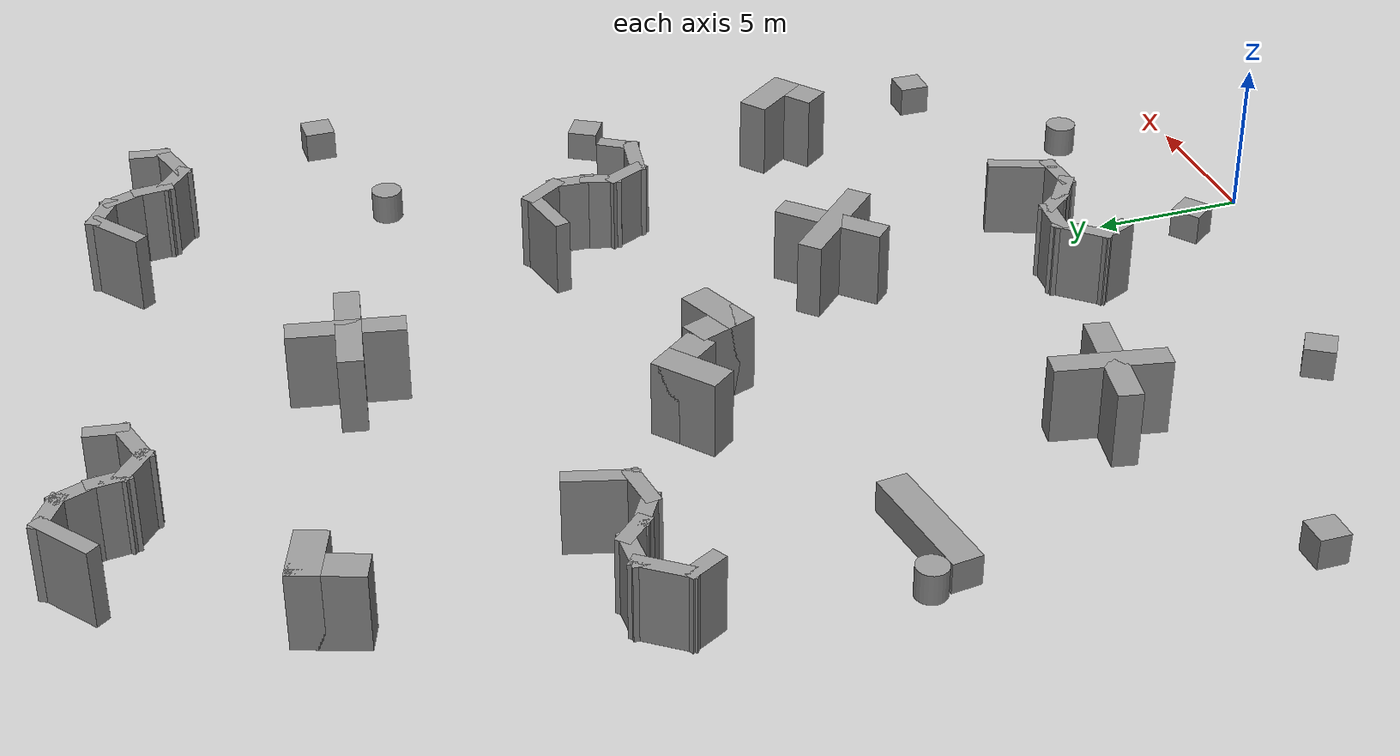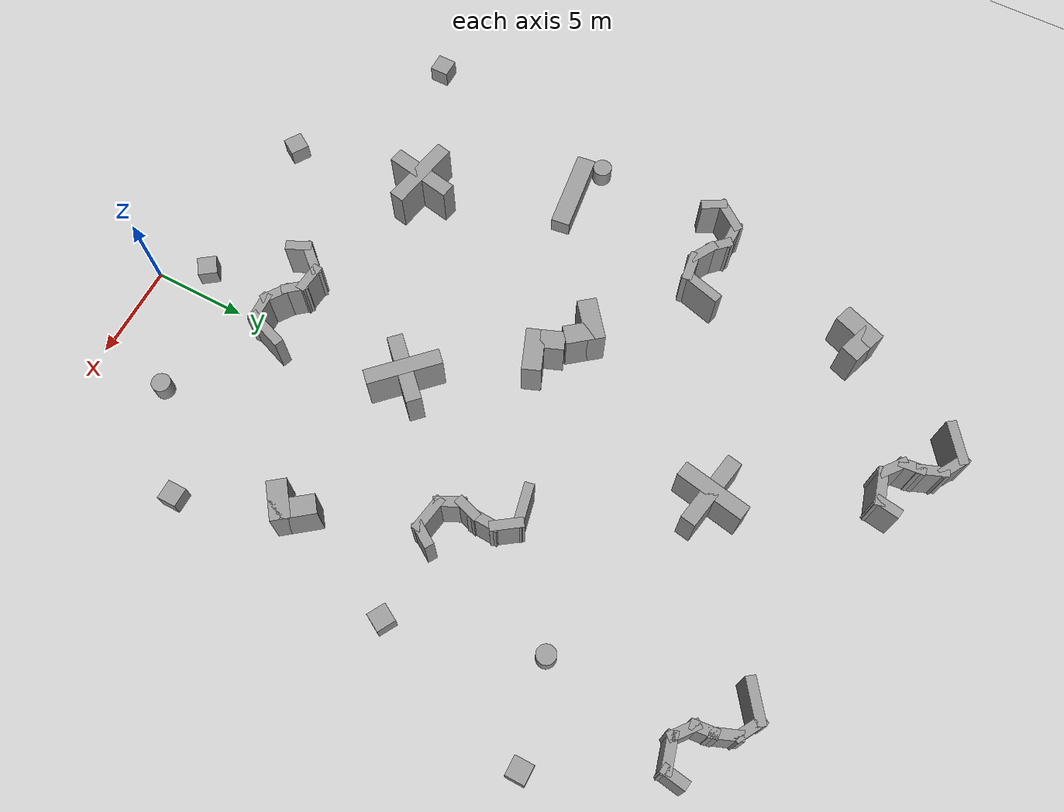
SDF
<sdf version="1.7">
 <world name="default">
  <light name="sun" type="directional">
   <pose>0 0 10 0 -0 0</pose>
   <diffuse>0.8 0.8 0.8 1</diffuse>
   <specular>0.2 0.2 0.2 1</specular>
   <attenuation>
    <range>1000</range>
    <constant>0.9</constant>
    <linear>0.01</linear>
    <quadratic>0.001</quadratic>
   </attenuation>
   <direction>-0.5 0.1 -0.9</direction>
   <spot><inner_angle>0</inner_angle><outer_angle>0</outer_angle><falloff>0</falloff></spot>
  </light>
  <model name="ground_plane">
   <static>1</static>
   <link name="link">
    <collision name="collision">
     <geometry><plane><normal>0 0 1</normal><size>100 100</size></plane></geometry>
     <surface><friction><ode><mu>100</mu><mu2>50</mu2></ode></friction></surface>
    </collision>
    <visual name="visual">
     <cast_shadows>0</cast_shadows>
     <geometry><plane><normal>0 0 1</normal><size>100 100</size></plane></geometry>
     <material>
      <script><uri>file://media/materials/scripts/gazebo.material</uri><name>Gazebo/Grey</name></script>
     </material>
    </visual>
   </link>
  </model>
  <gravity>0 0 -9.8</gravity>
  <magnetic_field>6e-06 2.3e-05 -4.2e-05</magnetic_field>
  <atmosphere type="adiabatic"/>
  <physics type="ode">
   <max_step_size>0.001</max_step_size>
   <real_time_factor>1</real_time_factor>
   <real_time_update_rate>1000</real_time_update_rate>
  </physics>
  <scene><ambient>0.4 0.4 0.4 1</ambient><background>0.7 0.7 0.7 1</background><shadows>1</shadows></scene>
  <spherical_coordinates>
   <surface_model>EARTH_WGS84</surface_model>
   <latitude_deg>0</latitude_deg>
   <longitude_deg>0</longitude_deg>
   <elevation>0</elevation>
   <heading_deg>0</heading_deg>
  </spherical_coordinates>
  <model name="unit_box">
   <pose>-1.29282 2.36192 0.5 0 -0 0.628744</pose>
   <link name="link">
    <inertial>
     <mass>1</mass>
     <inertia>
      <ixx>0.166667</ixx>
      <ixy>0</ixy>
      <ixz>0</ixz>
      <iyy>0.166667</iyy>
      <iyz>0</iyz>
      <izz>0.166667</izz>
     </inertia>
    </inertial>
    <collision name="collision"><geometry><box><size>1 1 1</size></box></geometry></collision>
    <visual name="visual">
     <geometry><box><size>1 1 1</size></box></geometry>
     <material>
      <script><name>Gazebo/Grey</name><uri>file://media/materials/scripts/gazebo.material</uri></script>
     </material>
    </visual>
   </link>
  </model>
  <model name="unit_box_0">
   <pose>10.0011 7.85153 0.499995 0 -1e-05 -5e-06</pose>
   <link name="link">
    <inertial>
     <mass>1</mass>
     <inertia>
      <ixx>0.166667</ixx>
      <ixy>0</ixy>
      <ixz>0</ixz>
      <iyy>0.166667</iyy>
      <iyz>0</iyz>
      <izz>0.166667</izz>
     </inertia>
    </inertial>
    <collision name="collision"><geometry><box><size>1 1 1</size></box></geometry></collision>
    <visual name="visual">
     <geometry><box><size>1 1 1</size></box></geometry>
     <material>
      <script><name>Gazebo/Grey</name><uri>file://media/materials/scripts/gazebo.material</uri></script>
     </material>
    </visual>
   </link>
  </model>
  <model name="unit_cylinder">
   <pose>-16.4277 18.0529 0.499991 2e-06 2e-06 -0.028876</pose>
   <link name="link">
    <inertial>
     <mass>1</mass>
     <inertia><ixx>0.145833</ixx><ixy>0</ixy><ixz>0</ixz><iyy>0.145833</iyy><iyz>0</iyz><izz>0.125</izz></inertia>
    </inertial>
    <collision name="collision">
     <geometry><cylinder><radius>0.5</radius><length>1</length></cylinder></geometry>
    </collision>
    <visual name="visual">
     <geometry><cylinder><radius>0.5</radius><length>1</length></cylinder></geometry>
     <material>
      <script><name>Gazebo/Grey</name><uri>file://media/materials/scripts/gazebo.material</uri></script>
     </material>
    </visual>
   </link>
  </model>
  <model name="unit_cylinder_0">
   <pose>5.39833 4.0388 0.499995 3e-06 -2e-06 0</pose>
   <link name="link">
    <inertial>
     <mass>1</mass>
     <inertia><ixx>0.145833</ixx><ixy>0</ixy><ixz>0</ixz><iyy>0.145833</iyy><iyz>0</iyz><izz>0.125</izz></inertia>
    </inertial>
    <collision name="collision">
     <geometry><cylinder><radius>0.5</radius><length>1</length></cylinder></geometry>
    </collision>
    <visual name="visual">
     <geometry><cylinder><radius>0.5</radius><length>1</length></cylinder></geometry>
     <material>
      <script><name>Gazebo/Grey</name><uri>file://media/materials/scripts/gazebo.material</uri></script>
     </material>
    </visual>
   </link>
  </model>
  <model name="unit_box_2">
   <pose>-18.3592 6.99219 0.499995 0 1e-05 0</pose>
   <link name="link">
    <inertial>
     <mass>1</mass>
     <inertia>
      <ixx>0.166667</ixx>
      <ixy>0</ixy>
      <ixz>0</ixz>
      <iyy>0.166667</iyy>
      <iyz>0</iyz>
      <izz>0.166667</izz>
     </inertia>
    </inertial>
    <collision name="collision"><geometry><box><size>1 1 1</size></box></geometry></collision>
    <visual name="visual">
     <geometry><box><size>1 1 1</size></box></geometry>
     <material>
      <script><name>Gazebo/Grey</name><uri>file://media/materials/scripts/gazebo.material</uri></script>
     </material>
    </visual>
   </link>
  </model>
  <model name="unit_box_3">
   <pose>10.4755 19.8984 0.5 0 -0 1.05451</pose>
   <link name="link">
    <inertial>
     <mass>1</mass>
     <inertia>
      <ixx>0.166667</ixx>
      <ixy>0</ixy>
      <ixz>0</ixz>
      <iyy>0.166667</iyy>
      <iyz>0</iyz>
      <izz>0.166667</izz>
     </inertia>
    </inertial>
    <collision name="collision"><geometry><box><size>1 1 1</size></box></geometry></collision>
    <visual name="visual">
     <geometry><box><size>1 1 1</size></box></geometry>
     <material>
      <script><name>Gazebo/Grey</name><uri>file://media/materials/scripts/gazebo.material</uri></script>
     </material>
    </visual>
   </link>
  </model>
  <model name="unit_cylinder_2">
   <pose>8.40854 27.4757 0.499999 0 -0 0</pose>
   <link name="link">
    <inertial>
     <mass>1</mass>
     <inertia><ixx>0.145833</ixx><ixy>0</ixy><ixz>0</ixz><iyy>0.145833</iyy><iyz>0</iyz><izz>0.125</izz></inertia>
    </inertial>
    <collision name="collision">
     <geometry><cylinder><radius>0.5</radius><length>1</length></cylinder></geometry>
    </collision>
    <visual name="visual">
     <geometry><cylinder><radius>0.5</radius><length>1</length></cylinder></geometry>
     <material>
      <script><name>Gazebo/Grey</name><uri>file://media/materials/scripts/gazebo.material</uri></script>
     </material>
    </visual>
   </link>
  </model>
  <model name="unit_box_4">
   <pose>-14.4082 17.3073 0.498109 0 1e-06 0.129412</pose>
   <link name="link">
    <inertial>
     <mass>1</mass>
     <inertia>
      <ixx>0.166667</ixx>
      <ixy>0</ixy>
      <ixz>0</ixz>
      <iyy>0.166667</iyy>
      <iyz>0</iyz>
      <izz>0.166667</izz>
     </inertia>
    </inertial>
    <collision name="collision"><geometry><box><size>4.27951 1 1</size></box></geometry></collision>
    <visual name="visual">
     <geometry><box><size>4.27951 1 1</size></box></geometry>
     <material>
      <script><name>Gazebo/Grey</name><uri>file://media/materials/scripts/gazebo.material</uri></script>
     </material>
    </visual>
   </link>
  </model>
  <model name="unit_box_6">
   <pose>-9.9585 2.43367 0.5 0 0 -0.568217</pose>
   <link name="link">
    <inertial>
     <mass>1</mass>
     <inertia>
      <ixx>0.166667</ixx>
      <ixy>0</ixy>
      <ixz>0</ixz>
      <iyy>0.166667</iyy>
      <iyz>0</iyz>
      <izz>0.166667</izz>
     </inertia>
    </inertial>
    <collision name="collision"><geometry><box><size>1 1 1</size></box></geometry></collision>
    <visual name="visual">
     <geometry><box><size>1 1 1</size></box></geometry>
     <material>
      <script><name>Gazebo/Grey</name><uri>file://media/materials/scripts/gazebo.material</uri></script>
     </material>
    </visual>
   </link>
  </model>
  <model name="unit_box_8">
   <pose>13.472 28.7702 0.499995 0 1e-05 0</pose>
   <link name="link">
    <inertial>
     <mass>1</mass>
     <inertia>
      <ixx>0.166667</ixx>
      <ixy>0</ixy>
      <ixz>0</ixz>
      <iyy>0.166667</iyy>
      <iyz>0</iyz>
      <izz>0.166667</izz>
     </inertia>
    </inertial>
    <collision name="collision"><geometry><box><size>1 1 1</size></box></geometry></collision>
    <visual name="visual">
     <geometry><box><size>1 1 1</size></box></geometry>
     <material>
      <script><name>Gazebo/Grey</name><uri>file://media/materials/scripts/gazebo.material</uri></script>
     </material>
    </visual>
   </link>
  </model>
  <model name="L_shape">
   <pose>-7.38122 20.2486 0 0 0 -2.46998</pose>
   <link name="Wall_0">
    <collision name="Wall_0_Collision">
     <geometry><box><size>2.25 1 2.5</size></box></geometry>
     <pose>0 0 1.25 0 -0 0</pose>
    </collision>
    <visual name="Wall_0_Visual">
     <pose>0 0 1.25 0 -0 0</pose>
     <geometry><box><size>2.25 1 2.5</size></box></geometry>
     <material>
      <script><uri>file://media/materials/scripts/gazebo.material</uri><name>Gazebo/Grey</name></script>
      <ambient>1 1 1 1</ambient>
     </material>
     <meta><layer>0</layer></meta>
    </visual>
    <pose>-1.1474 -1.16979 0 0 -0 3.14159</pose>
   </link>
   <link name="Wall_1">
    <collision name="Wall_1_Collision">
     <geometry><box><size>2 1 2.5</size></box></geometry>
     <pose>0 0 1.25 0 -0 0</pose>
    </collision>
    <visual name="Wall_1_Visual">
     <pose>0 0 1.25 0 -0 0</pose>
     <geometry><box><size>2 1 2.5</size></box></geometry>
     <material>
      <script><uri>file://media/materials/scripts/gazebo.material</uri><name>Gazebo/Grey</name></script>
      <ambient>1 1 1 1</ambient>
     </material>
     <meta><layer>0</layer></meta>
    </visual>
    <pose>-1.7724 -0.669791 0 0 -0 1.5708</pose>
   </link>
   <static>1</static>
  </model>
  <model name="x_shape">
   <pose>1.15096 17.2708 0 0 -0 0</pose>
   <link name="Wall_3">
    <collision name="Wall_3_Collision">
     <geometry><box><size>3.89983 0.8 2.5</size></box></geometry>
     <pose>0 0 1.25 0 -0 0</pose>
    </collision>
    <visual name="Wall_3_Visual">
     <pose>0 0 1.25 0 -0 0</pose>
     <geometry><box><size>3.89983 0.8 2.5</size></box></geometry>
     <material>
      <script><uri>file://media/materials/scripts/gazebo.material</uri><name>Gazebo/Grey</name></script>
      <ambient>1 1 1 1</ambient>
     </material>
     <meta><layer>0</layer></meta>
    </visual>
    <pose>-1.69468 -2.43768 0 0 -0 2.35619</pose>
   </link>
   <link name="Wall_5">
    <collision name="Wall_5_Collision">
     <geometry><box><size>3.65035 0.8 2.5</size></box></geometry>
     <pose>0 0 1.25 0 -0 0</pose>
    </collision>
    <visual name="Wall_5_Visual">
     <pose>0 0 1.25 0 -0 0</pose>
     <geometry><box><size>3.65035 0.8 2.5</size></box></geometry>
     <material>
      <script><uri>file://media/materials/scripts/gazebo.material</uri><name>Gazebo/Grey</name></script>
      <ambient>1 1 1 1</ambient>
     </material>
     <meta><layer>0</layer></meta>
    </visual>
    <pose>-1.66718 -2.35168 0 0 -0 -2.35595</pose>
   </link>
   <static>1</static>
  </model>
  <model name="L_shape_clone">
   <pose>-3.74951 21.6177 0 0 -0 0.374525</pose>
   <link name="Wall_0">
    <collision name="Wall_0_Collision">
     <geometry><box><size>2.25 1 2.5</size></box></geometry>
     <pose>0 0 1.25 0 -0 0</pose>
    </collision>
    <visual name="Wall_0_Visual">
     <pose>0 0 1.25 0 -0 0</pose>
     <geometry><box><size>2.25 1 2.5</size></box></geometry>
     <material>
      <script><uri>file://media/materials/scripts/gazebo.material</uri><name>Gazebo/Grey</name></script>
      <ambient>1 1 1 1</ambient>
     </material>
     <meta><layer>0</layer></meta>
    </visual>
    <pose>-1.1474 -1.16979 0 0 -0 3.14159</pose>
   </link>
   <link name="Wall_1">
    <collision name="Wall_1_Collision">
     <geometry><box><size>2 1 2.5</size></box></geometry>
     <pose>0 0 1.25 0 -0 0</pose>
    </collision>
    <visual name="Wall_1_Visual">
     <pose>0 0 1.25 0 -0 0</pose>
     <geometry><box><size>2 1 2.5</size></box></geometry>
     <material>
      <script><uri>file://media/materials/scripts/gazebo.material</uri><name>Gazebo/Grey</name></script>
      <ambient>1 1 1 1</ambient>
     </material>
     <meta><layer>0</layer></meta>
    </visual>
    <pose>-1.7724 -0.669791 0 0 -0 1.5708</pose>
   </link>
   <static>1</static>
  </model>
  <model name="x_shape_clone">
   <pose>-10.7228 12.9546 0 0 -0 0.6013</pose>
   <link name="Wall_3">
    <collision name="Wall_3_Collision">
     <geometry><box><size>3.89983 0.8 2.5</size></box></geometry>
     <pose>0 0 1.25 0 -0 0</pose>
    </collision>
    <visual name="Wall_3_Visual">
     <pose>0 0 1.25 0 -0 0</pose>
     <geometry><box><size>3.89983 0.8 2.5</size></box></geometry>
     <material>
      <script><uri>file://media/materials/scripts/gazebo.material</uri><name>Gazebo/Grey</name></script>
      <ambient>1 1 1 1</ambient>
     </material>
     <meta><layer>0</layer></meta>
    </visual>
    <pose>-1.69468 -2.43768 0 0 -0 2.35619</pose>
   </link>
   <link name="Wall_5">
    <collision name="Wall_5_Collision">
     <geometry><box><size>3.65035 0.8 2.5</size></box></geometry>
     <pose>0 0 1.25 0 -0 0</pose>
    </collision>
    <visual name="Wall_5_Visual">
     <pose>0 0 1.25 0 -0 0</pose>
     <geometry><box><size>3.65035 0.8 2.5</size></box></geometry>
     <material>
      <script><uri>file://media/materials/scripts/gazebo.material</uri><name>Gazebo/Grey</name></script>
      <ambient>1 1 1 1</ambient>
     </material>
     <meta><layer>0</layer></meta>
    </visual>
    <pose>-1.66718 -2.35168 0 0 -0 -2.35595</pose>
   </link>
   <static>1</static>
  </model>
  <model name="x_shape_clone_clone">
   <pose>-1.79867 33.9106 0 0 -0 0.6013</pose>
   <link name="Wall_3">
    <collision name="Wall_3_Collision">
     <geometry><box><size>3.89983 0.8 2.5</size></box></geometry>
     <pose>0 0 1.25 0 -0 0</pose>
    </collision>
    <visual name="Wall_3_Visual">
     <pose>0 0 1.25 0 -0 0</pose>
     <geometry><box><size>3.89983 0.8 2.5</size></box></geometry>
     <material>
      <script><uri>file://media/materials/scripts/gazebo.material</uri><name>Gazebo/Grey</name></script>
      <ambient>1 1 1 1</ambient>
     </material>
     <meta><layer>0</layer></meta>
    </visual>
    <pose>-1.69468 -2.43768 0 0 -0 2.35619</pose>
   </link>
   <link name="Wall_5">
    <collision name="Wall_5_Collision">
     <geometry><box><size>3.65035 0.8 2.5</size></box></geometry>
     <pose>0 0 1.25 0 -0 0</pose>
    </collision>
    <visual name="Wall_5_Visual">
     <pose>0 0 1.25 0 -0 0</pose>
     <geometry><box><size>3.65035 0.8 2.5</size></box></geometry>
     <material>
      <script><uri>file://media/materials/scripts/gazebo.material</uri><name>Gazebo/Grey</name></script>
      <ambient>1 1 1 1</ambient>
     </material>
     <meta><layer>0</layer></meta>
    </visual>
    <pose>-1.66718 -2.35168 0 0 -0 -2.35595</pose>
   </link>
   <static>1</static>
  </model>
  <model name="L_shape_clone_0">
   <pose>-12.3639 32.4986 0 0 0 -1.91642</pose>
   <link name="Wall_0">
    <collision name="Wall_0_Collision">
     <geometry><box><size>2.25 1 2.5</size></box></geometry>
     <pose>0 0 1.25 0 -0 0</pose>
    </collision>
    <visual name="Wall_0_Visual">
     <pose>0 0 1.25 0 -0 0</pose>
     <geometry><box><size>2.25 1 2.5</size></box></geometry>
     <material>
      <script><uri>file://media/materials/scripts/gazebo.material</uri><name>Gazebo/Grey</name></script>
      <ambient>1 1 1 1</ambient>
     </material>
     <meta><layer>0</layer></meta>
    </visual>
    <pose>-1.1474 -1.16979 0 0 -0 3.14159</pose>
   </link>
   <link name="Wall_1">
    <collision name="Wall_1_Collision">
     <geometry><box><size>2 1 2.5</size></box></geometry>
     <pose>0 0 1.25 0 -0 0</pose>
    </collision>
    <visual name="Wall_1_Visual">
     <pose>0 0 1.25 0 -0 0</pose>
     <geometry><box><size>2 1 2.5</size></box></geometry>
     <material>
      <script><uri>file://media/materials/scripts/gazebo.material</uri><name>Gazebo/Grey</name></script>
      <ambient>1 1 1 1</ambient>
     </material>
     <meta><layer>0</layer></meta>
    </visual>
    <pose>-1.7724 -0.669791 0 0 -0 1.5708</pose>
   </link>
   <static>1</static>
  </model>
  <model name="s_shape">
   <pose>-11.9615 18.5161 0 0 0 -1.57805</pose>
   <link name="Wall_12">
    <collision name="Wall_12_Collision">
     <geometry><box><size>2.25 0.5 2.5</size></box></geometry>
     <pose>0 0 1.25 0 -0 0</pose>
    </collision>
    <visual name="Wall_12_Visual">
     <pose>0 0 1.25 0 -0 0</pose>
     <geometry><box><size>2.25 0.5 2.5</size></box></geometry>
     <material>
      <script><uri>file://media/materials/scripts/gazebo.material</uri><name>Gazebo/Grey</name></script>
      <ambient>1 1 1 1</ambient>
     </material>
     <meta><layer>0</layer></meta>
    </visual>
    <pose>-7.47897 0.373314 0 0 -0 -0.261799</pose>
   </link>
   <link name="Wall_13">
    <collision name="Wall_13_Collision">
     <geometry><box><size>1.66773 0.5 2.5</size></box></geometry>
     <pose>0 0 1.25 0 -0 0</pose>
    </collision>
    <visual name="Wall_13_Visual">
     <pose>0 0 1.25 0 -0 0</pose>
     <geometry><box><size>1.66773 0.5 2.5</size></box></geometry>
     <material>
      <script><uri>file://media/materials/scripts/gazebo.material</uri><name>Gazebo/Grey</name></script>
      <ambient>1 1 1 1</ambient>
     </material>
     <meta><layer>0</layer></meta>
    </visual>
    <pose>-6.53266 -0.408654 0 0 -0 -1.4368</pose>
   </link>
   <link name="Wall_14">
    <collision name="Wall_14_Collision">
     <geometry><box><size>1.60066 0.5 2.5</size></box></geometry>
     <pose>0 0 1.25 0 -0 0</pose>
    </collision>
    <visual name="Wall_14_Visual">
     <pose>0 0 1.25 0 -0 0</pose>
     <geometry><box><size>1.60066 0.5 2.5</size></box></geometry>
     <material>
      <script><uri>file://media/materials/scripts/gazebo.material</uri><name>Gazebo/Grey</name></script>
      <ambient>1 1 1 1</ambient>
     </material>
     <meta><layer>0</layer></meta>
    </visual>
    <pose>-6.72966 -1.46379 0 0 -0 -2.09423</pose>
   </link>
   <link name="Wall_15">
    <collision name="Wall_15_Collision">
     <geometry><box><size>1.35042 0.5 2.5</size></box></geometry>
     <pose>0 0 1.25 0 -0 0</pose>
    </collision>
    <visual name="Wall_15_Visual">
     <pose>0 0 1.25 0 -0 0</pose>
     <geometry><box><size>1.35042 0.5 2.5</size></box></geometry>
     <material>
      <script><uri>file://media/materials/scripts/gazebo.material</uri><name>Gazebo/Grey</name></script>
      <ambient>1 1 1 1</ambient>
     </material>
     <meta><layer>0</layer></meta>
    </visual>
    <pose>-7.30566 -2.24079 0 0 -0 -2.35703</pose>
   </link>
   <link name="Wall_16">
    <collision name="Wall_16_Collision">
     <geometry><box><size>1.60015 0.5 2.5</size></box></geometry>
     <pose>0 0 1.25 0 -0 0</pose>
    </collision>
    <visual name="Wall_16_Visual">
     <pose>0 0 1.25 0 -0 0</pose>
     <geometry><box><size>1.60015 0.5 2.5</size></box></geometry>
     <material>
      <script><uri>file://media/materials/scripts/gazebo.material</uri><name>Gazebo/Grey</name></script>
      <ambient>1 1 1 1</ambient>
     </material>
     <meta><layer>0</layer></meta>
    </visual>
    <pose>-7.60666 -3.09129 0 0 -0 -1.5708</pose>
   </link>
   <link name="Wall_17">
    <collision name="Wall_17_Collision">
     <geometry><box><size>1.97179 0.5 2.5</size></box></geometry>
     <pose>0 0 1.25 0 -0 0</pose>
    </collision>
    <visual name="Wall_17_Visual">
     <pose>0 0 1.25 0 -0 0</pose>
     <geometry><box><size>1.97179 0.5 2.5</size></box></geometry>
     <material>
      <script><uri>file://media/materials/scripts/gazebo.material</uri><name>Gazebo/Grey</name></script>
      <ambient>1 1 1 1</ambient>
     </material>
     <meta><layer>0</layer></meta>
    </visual>
    <pose>-7.0145 -4.0782 0 0 -0 -0.635673</pose>
   </link>
   <link name="Wall_18">
    <collision name="Wall_18_Collision">
     <geometry><box><size>1.3499 0.5 2.5</size></box></geometry>
     <pose>0 0 1.25 0 -0 0</pose>
    </collision>
    <visual name="Wall_18_Visual">
     <pose>0 0 1.25 0 -0 0</pose>
     <geometry><box><size>1.3499 0.5 2.5</size></box></geometry>
     <material>
      <script><uri>file://media/materials/scripts/gazebo.material</uri><name>Gazebo/Grey</name></script>
      <ambient>1 1 1 1</ambient>
     </material>
     <meta><layer>0</layer></meta>
    </visual>
    <pose>-6.03122 -4.30262 0 0 -0 0.52367</pose>
   </link>
   <static>1</static>
  </model>
  <model name="s_shape_clone">
   <pose>9.78458 26.5237 0 0 -0 0.477744</pose>
   <link name="Wall_12">
    <collision name="Wall_12_Collision">
     <geometry><box><size>2.25 0.5 2.5</size></box></geometry>
     <pose>0 0 1.25 0 -0 0</pose>
    </collision>
    <visual name="Wall_12_Visual">
     <pose>0 0 1.25 0 -0 0</pose>
     <geometry><box><size>2.25 0.5 2.5</size></box></geometry>
     <material>
      <script><uri>file://media/materials/scripts/gazebo.material</uri><name>Gazebo/Grey</name></script>
      <ambient>1 1 1 1</ambient>
     </material>
     <meta><layer>0</layer></meta>
    </visual>
    <pose>-7.47897 0.373314 0 0 -0 -0.261799</pose>
   </link>
   <link name="Wall_13">
    <collision name="Wall_13_Collision">
     <geometry><box><size>1.66773 0.5 2.5</size></box></geometry>
     <pose>0 0 1.25 0 -0 0</pose>
    </collision>
    <visual name="Wall_13_Visual">
     <pose>0 0 1.25 0 -0 0</pose>
     <geometry><box><size>1.66773 0.5 2.5</size></box></geometry>
     <material>
      <script><uri>file://media/materials/scripts/gazebo.material</uri><name>Gazebo/Grey</name></script>
      <ambient>1 1 1 1</ambient>
     </material>
     <meta><layer>0</layer></meta>
    </visual>
    <pose>-6.53266 -0.408654 0 0 -0 -1.4368</pose>
   </link>
   <link name="Wall_14">
    <collision name="Wall_14_Collision">
     <geometry><box><size>1.60066 0.5 2.5</size></box></geometry>
     <pose>0 0 1.25 0 -0 0</pose>
    </collision>
    <visual name="Wall_14_Visual">
     <pose>0 0 1.25 0 -0 0</pose>
     <geometry><box><size>1.60066 0.5 2.5</size></box></geometry>
     <material>
      <script><uri>file://media/materials/scripts/gazebo.material</uri><name>Gazebo/Grey</name></script>
      <ambient>1 1 1 1</ambient>
     </material>
     <meta><layer>0</layer></meta>
    </visual>
    <pose>-6.72966 -1.46379 0 0 -0 -2.09423</pose>
   </link>
   <link name="Wall_15">
    <collision name="Wall_15_Collision">
     <geometry><box><size>1.35042 0.5 2.5</size></box></geometry>
     <pose>0 0 1.25 0 -0 0</pose>
    </collision>
    <visual name="Wall_15_Visual">
     <pose>0 0 1.25 0 -0 0</pose>
     <geometry><box><size>1.35042 0.5 2.5</size></box></geometry>
     <material>
      <script><uri>file://media/materials/scripts/gazebo.material</uri><name>Gazebo/Grey</name></script>
      <ambient>1 1 1 1</ambient>
     </material>
     <meta><layer>0</layer></meta>
    </visual>
    <pose>-7.30566 -2.24079 0 0 -0 -2.35703</pose>
   </link>
   <link name="Wall_16">
    <collision name="Wall_16_Collision">
     <geometry><box><size>1.60015 0.5 2.5</size></box></geometry>
     <pose>0 0 1.25 0 -0 0</pose>
    </collision>
    <visual name="Wall_16_Visual">
     <pose>0 0 1.25 0 -0 0</pose>
     <geometry><box><size>1.60015 0.5 2.5</size></box></geometry>
     <material>
      <script><uri>file://media/materials/scripts/gazebo.material</uri><name>Gazebo/Grey</name></script>
      <ambient>1 1 1 1</ambient>
     </material>
     <meta><layer>0</layer></meta>
    </visual>
    <pose>-7.60666 -3.09129 0 0 -0 -1.5708</pose>
   </link>
   <link name="Wall_17">
    <collision name="Wall_17_Collision">
     <geometry><box><size>1.97179 0.5 2.5</size></box></geometry>
     <pose>0 0 1.25 0 -0 0</pose>
    </collision>
    <visual name="Wall_17_Visual">
     <pose>0 0 1.25 0 -0 0</pose>
     <geometry><box><size>1.97179 0.5 2.5</size></box></geometry>
     <material>
      <script><uri>file://media/materials/scripts/gazebo.material</uri><name>Gazebo/Grey</name></script>
      <ambient>1 1 1 1</ambient>
     </material>
     <meta><layer>0</layer></meta>
    </visual>
    <pose>-7.0145 -4.0782 0 0 -0 -0.635673</pose>
   </link>
   <link name="Wall_18">
    <collision name="Wall_18_Collision">
     <geometry><box><size>1.3499 0.5 2.5</size></box></geometry>
     <pose>0 0 1.25 0 -0 0</pose>
    </collision>
    <visual name="Wall_18_Visual">
     <pose>0 0 1.25 0 -0 0</pose>
     <geometry><box><size>1.3499 0.5 2.5</size></box></geometry>
     <material>
      <script><uri>file://media/materials/scripts/gazebo.material</uri><name>Gazebo/Grey</name></script>
      <ambient>1 1 1 1</ambient>
     </material>
     <meta><layer>0</layer></meta>
    </visual>
    <pose>-6.03122 -4.30262 0 0 -0 0.52367</pose>
   </link>
   <static>1</static>
  </model>
  <model name="L_shape_clone_1">
   <pose>6.52083 14.0735 0 0 -0 2.22766</pose>
   <link name="Wall_0">
    <collision name="Wall_0_Collision">
     <geometry><box><size>2.25 1 2.5</size></box></geometry>
     <pose>0 0 1.25 0 -0 0</pose>
    </collision>
    <visual name="Wall_0_Visual">
     <pose>0 0 1.25 0 -0 0</pose>
     <geometry><box><size>2.25 1 2.5</size></box></geometry>
     <material>
      <script><uri>file://media/materials/scripts/gazebo.material</uri><name>Gazebo/Grey</name></script>
      <ambient>1 1 1 1</ambient>
     </material>
     <meta><layer>0</layer></meta>
    </visual>
    <pose>-1.1474 -1.16979 0 0 -0 3.14159</pose>
   </link>
   <link name="Wall_1">
    <collision name="Wall_1_Collision">
     <geometry><box><size>2 1 2.5</size></box></geometry>
     <pose>0 0 1.25 0 -0 0</pose>
    </collision>
    <visual name="Wall_1_Visual">
     <pose>0 0 1.25 0 -0 0</pose>
     <geometry><box><size>2 1 2.5</size></box></geometry>
     <material>
      <script><uri>file://media/materials/scripts/gazebo.material</uri><name>Gazebo/Grey</name></script>
      <ambient>1 1 1 1</ambient>
     </material>
     <meta><layer>0</layer></meta>
    </visual>
    <pose>-1.7724 -0.669791 0 0 -0 1.5708</pose>
   </link>
   <static>1</static>
  </model>
  <model name="s_shape_clone_clone">
   <pose>11.125 42.2873 0 0 -0 0.895072</pose>
   <link name="Wall_12">
    <collision name="Wall_12_Collision">
     <geometry><box><size>2.25 0.5 2.5</size></box></geometry>
     <pose>0 0 1.25 0 -0 0</pose>
    </collision>
    <visual name="Wall_12_Visual">
     <pose>0 0 1.25 0 -0 0</pose>
     <geometry><box><size>2.25 0.5 2.5</size></box></geometry>
     <material>
      <script><uri>file://media/materials/scripts/gazebo.material</uri><name>Gazebo/Grey</name></script>
      <ambient>1 1 1 1</ambient>
     </material>
     <meta><layer>0</layer></meta>
    </visual>
    <pose>-7.47897 0.373314 0 0 -0 -0.261799</pose>
   </link>
   <link name="Wall_13">
    <collision name="Wall_13_Collision">
     <geometry><box><size>1.66773 0.5 2.5</size></box></geometry>
     <pose>0 0 1.25 0 -0 0</pose>
    </collision>
    <visual name="Wall_13_Visual">
     <pose>0 0 1.25 0 -0 0</pose>
     <geometry><box><size>1.66773 0.5 2.5</size></box></geometry>
     <material>
      <script><uri>file://media/materials/scripts/gazebo.material</uri><name>Gazebo/Grey</name></script>
      <ambient>1 1 1 1</ambient>
     </material>
     <meta><layer>0</layer></meta>
    </visual>
    <pose>-6.53266 -0.408654 0 0 -0 -1.4368</pose>
   </link>
   <link name="Wall_14">
    <collision name="Wall_14_Collision">
     <geometry><box><size>1.60066 0.5 2.5</size></box></geometry>
     <pose>0 0 1.25 0 -0 0</pose>
    </collision>
    <visual name="Wall_14_Visual">
     <pose>0 0 1.25 0 -0 0</pose>
     <geometry><box><size>1.60066 0.5 2.5</size></box></geometry>
     <material>
      <script><uri>file://media/materials/scripts/gazebo.material</uri><name>Gazebo/Grey</name></script>
      <ambient>1 1 1 1</ambient>
     </material>
     <meta><layer>0</layer></meta>
    </visual>
    <pose>-6.72966 -1.46379 0 0 -0 -2.09423</pose>
   </link>
   <link name="Wall_15">
    <collision name="Wall_15_Collision">
     <geometry><box><size>1.35042 0.5 2.5</size></box></geometry>
     <pose>0 0 1.25 0 -0 0</pose>
    </collision>
    <visual name="Wall_15_Visual">
     <pose>0 0 1.25 0 -0 0</pose>
     <geometry><box><size>1.35042 0.5 2.5</size></box></geometry>
     <material>
      <script><uri>file://media/materials/scripts/gazebo.material</uri><name>Gazebo/Grey</name></script>
      <ambient>1 1 1 1</ambient>
     </material>
     <meta><layer>0</layer></meta>
    </visual>
    <pose>-7.30566 -2.24079 0 0 -0 -2.35703</pose>
   </link>
   <link name="Wall_16">
    <collision name="Wall_16_Collision">
     <geometry><box><size>1.60015 0.5 2.5</size></box></geometry>
     <pose>0 0 1.25 0 -0 0</pose>
    </collision>
    <visual name="Wall_16_Visual">
     <pose>0 0 1.25 0 -0 0</pose>
     <geometry><box><size>1.60015 0.5 2.5</size></box></geometry>
     <material>
      <script><uri>file://media/materials/scripts/gazebo.material</uri><name>Gazebo/Grey</name></script>
      <ambient>1 1 1 1</ambient>
     </material>
     <meta><layer>0</layer></meta>
    </visual>
    <pose>-7.60666 -3.09129 0 0 -0 -1.5708</pose>
   </link>
   <link name="Wall_17">
    <collision name="Wall_17_Collision">
     <geometry><box><size>1.97179 0.5 2.5</size></box></geometry>
     <pose>0 0 1.25 0 -0 0</pose>
    </collision>
    <visual name="Wall_17_Visual">
     <pose>0 0 1.25 0 -0 0</pose>
     <geometry><box><size>1.97179 0.5 2.5</size></box></geometry>
     <material>
      <script><uri>file://media/materials/scripts/gazebo.material</uri><name>Gazebo/Grey</name></script>
      <ambient>1 1 1 1</ambient>
     </material>
     <meta><layer>0</layer></meta>
    </visual>
    <pose>-7.0145 -4.0782 0 0 -0 -0.635673</pose>
   </link>
   <link name="Wall_18">
    <collision name="Wall_18_Collision">
     <geometry><box><size>1.3499 0.5 2.5</size></box></geometry>
     <pose>0 0 1.25 0 -0 0</pose>
    </collision>
    <visual name="Wall_18_Visual">
     <pose>0 0 1.25 0 -0 0</pose>
     <geometry><box><size>1.3499 0.5 2.5</size></box></geometry>
     <material>
      <script><uri>file://media/materials/scripts/gazebo.material</uri><name>Gazebo/Grey</name></script>
      <ambient>1 1 1 1</ambient>
     </material>
     <meta><layer>0</layer></meta>
    </visual>
    <pose>-6.03122 -4.30262 0 0 -0 0.52367</pose>
   </link>
   <static>1</static>
  </model>
  <model name="s_shape_clone_clone_clone">
   <pose>-4.56021 46.0081 0 0 -0 0.895072</pose>
   <link name="Wall_12">
    <collision name="Wall_12_Collision">
     <geometry><box><size>2.25 0.5 2.5</size></box></geometry>
     <pose>0 0 1.25 0 -0 0</pose>
    </collision>
    <visual name="Wall_12_Visual">
     <pose>0 0 1.25 0 -0 0</pose>
     <geometry><box><size>2.25 0.5 2.5</size></box></geometry>
     <material>
      <script><uri>file://media/materials/scripts/gazebo.material</uri><name>Gazebo/Grey</name></script>
      <ambient>1 1 1 1</ambient>
     </material>
     <meta><layer>0</layer></meta>
    </visual>
    <pose>-7.47897 0.373314 0 0 -0 -0.261799</pose>
   </link>
   <link name="Wall_13">
    <collision name="Wall_13_Collision">
     <geometry><box><size>1.66773 0.5 2.5</size></box></geometry>
     <pose>0 0 1.25 0 -0 0</pose>
    </collision>
    <visual name="Wall_13_Visual">
     <pose>0 0 1.25 0 -0 0</pose>
     <geometry><box><size>1.66773 0.5 2.5</size></box></geometry>
     <material>
      <script><uri>file://media/materials/scripts/gazebo.material</uri><name>Gazebo/Grey</name></script>
      <ambient>1 1 1 1</ambient>
     </material>
     <meta><layer>0</layer></meta>
    </visual>
    <pose>-6.53266 -0.408654 0 0 -0 -1.4368</pose>
   </link>
   <link name="Wall_14">
    <collision name="Wall_14_Collision">
     <geometry><box><size>1.60066 0.5 2.5</size></box></geometry>
     <pose>0 0 1.25 0 -0 0</pose>
    </collision>
    <visual name="Wall_14_Visual">
     <pose>0 0 1.25 0 -0 0</pose>
     <geometry><box><size>1.60066 0.5 2.5</size></box></geometry>
     <material>
      <script><uri>file://media/materials/scripts/gazebo.material</uri><name>Gazebo/Grey</name></script>
      <ambient>1 1 1 1</ambient>
     </material>
     <meta><layer>0</layer></meta>
    </visual>
    <pose>-6.72966 -1.46379 0 0 -0 -2.09423</pose>
   </link>
   <link name="Wall_15">
    <collision name="Wall_15_Collision">
     <geometry><box><size>1.35042 0.5 2.5</size></box></geometry>
     <pose>0 0 1.25 0 -0 0</pose>
    </collision>
    <visual name="Wall_15_Visual">
     <pose>0 0 1.25 0 -0 0</pose>
     <geometry><box><size>1.35042 0.5 2.5</size></box></geometry>
     <material>
      <script><uri>file://media/materials/scripts/gazebo.material</uri><name>Gazebo/Grey</name></script>
      <ambient>1 1 1 1</ambient>
     </material>
     <meta><layer>0</layer></meta>
    </visual>
    <pose>-7.30566 -2.24079 0 0 -0 -2.35703</pose>
   </link>
   <link name="Wall_16">
    <collision name="Wall_16_Collision">
     <geometry><box><size>1.60015 0.5 2.5</size></box></geometry>
     <pose>0 0 1.25 0 -0 0</pose>
    </collision>
    <visual name="Wall_16_Visual">
     <pose>0 0 1.25 0 -0 0</pose>
     <geometry><box><size>1.60015 0.5 2.5</size></box></geometry>
     <material>
      <script><uri>file://media/materials/scripts/gazebo.material</uri><name>Gazebo/Grey</name></script>
      <ambient>1 1 1 1</ambient>
     </material>
     <meta><layer>0</layer></meta>
    </visual>
    <pose>-7.60666 -3.09129 0 0 -0 -1.5708</pose>
   </link>
   <link name="Wall_17">
    <collision name="Wall_17_Collision">
     <geometry><box><size>1.97179 0.5 2.5</size></box></geometry>
     <pose>0 0 1.25 0 -0 0</pose>
    </collision>
    <visual name="Wall_17_Visual">
     <pose>0 0 1.25 0 -0 0</pose>
     <geometry><box><size>1.97179 0.5 2.5</size></box></geometry>
     <material>
      <script><uri>file://media/materials/scripts/gazebo.material</uri><name>Gazebo/Grey</name></script>
      <ambient>1 1 1 1</ambient>
     </material>
     <meta><layer>0</layer></meta>
    </visual>
    <pose>-7.0145 -4.0782 0 0 -0 -0.635673</pose>
   </link>
   <link name="Wall_18">
    <collision name="Wall_18_Collision">
     <geometry><box><size>1.3499 0.5 2.5</size></box></geometry>
     <pose>0 0 1.25 0 -0 0</pose>
    </collision>
    <visual name="Wall_18_Visual">
     <pose>0 0 1.25 0 -0 0</pose>
     <geometry><box><size>1.3499 0.5 2.5</size></box></geometry>
     <material>
      <script><uri>file://media/materials/scripts/gazebo.material</uri><name>Gazebo/Grey</name></script>
      <ambient>1 1 1 1</ambient>
     </material>
     <meta><layer>0</layer></meta>
    </visual>
    <pose>-6.03122 -4.30262 0 0 -0 0.52367</pose>
   </link>
   <static>1</static>
  </model>
  <model name="s_shape_0">
   <pose>-0.191643 0.26554 0 0 0 -1.65789</pose>
   <link name="Wall_12">
    <collision name="Wall_12_Collision">
     <geometry><box><size>2.25 0.5 2.5</size></box></geometry>
     <pose>0 0 1.25 0 -0 0</pose>
    </collision>
    <visual name="Wall_12_Visual">
     <pose>0 0 1.25 0 -0 0</pose>
     <geometry><box><size>2.25 0.5 2.5</size></box></geometry>
     <material>
      <script><uri>file://media/materials/scripts/gazebo.material</uri><name>Gazebo/Grey</name></script>
      <ambient>1 1 1 1</ambient>
     </material>
     <meta><layer>0</layer></meta>
    </visual>
    <pose>-7.47897 0.373314 0 0 -0 -0.261799</pose>
   </link>
   <link name="Wall_13">
    <collision name="Wall_13_Collision">
     <geometry><box><size>1.66773 0.5 2.5</size></box></geometry>
     <pose>0 0 1.25 0 -0 0</pose>
    </collision>
    <visual name="Wall_13_Visual">
     <pose>0 0 1.25 0 -0 0</pose>
     <geometry><box><size>1.66773 0.5 2.5</size></box></geometry>
     <material>
      <script><uri>file://media/materials/scripts/gazebo.material</uri><name>Gazebo/Grey</name></script>
      <ambient>1 1 1 1</ambient>
     </material>
     <meta><layer>0</layer></meta>
    </visual>
    <pose>-6.53266 -0.408654 0 0 -0 -1.4368</pose>
   </link>
   <link name="Wall_14">
    <collision name="Wall_14_Collision">
     <geometry><box><size>1.60066 0.5 2.5</size></box></geometry>
     <pose>0 0 1.25 0 -0 0</pose>
    </collision>
    <visual name="Wall_14_Visual">
     <pose>0 0 1.25 0 -0 0</pose>
     <geometry><box><size>1.60066 0.5 2.5</size></box></geometry>
     <material>
      <script><uri>file://media/materials/scripts/gazebo.material</uri><name>Gazebo/Grey</name></script>
      <ambient>1 1 1 1</ambient>
     </material>
     <meta><layer>0</layer></meta>
    </visual>
    <pose>-6.72966 -1.46379 0 0 -0 -2.09423</pose>
   </link>
   <link name="Wall_15">
    <collision name="Wall_15_Collision">
     <geometry><box><size>1.35042 0.5 2.5</size></box></geometry>
     <pose>0 0 1.25 0 -0 0</pose>
    </collision>
    <visual name="Wall_15_Visual">
     <pose>0 0 1.25 0 -0 0</pose>
     <geometry><box><size>1.35042 0.5 2.5</size></box></geometry>
     <material>
      <script><uri>file://media/materials/scripts/gazebo.material</uri><name>Gazebo/Grey</name></script>
      <ambient>1 1 1 1</ambient>
     </material>
     <meta><layer>0</layer></meta>
    </visual>
    <pose>-7.30566 -2.24079 0 0 -0 -2.35703</pose>
   </link>
   <link name="Wall_16">
    <collision name="Wall_16_Collision">
     <geometry><box><size>1.60015 0.5 2.5</size></box></geometry>
     <pose>0 0 1.25 0 -0 0</pose>
    </collision>
    <visual name="Wall_16_Visual">
     <pose>0 0 1.25 0 -0 0</pose>
     <geometry><box><size>1.60015 0.5 2.5</size></box></geometry>
     <material>
      <script><uri>file://media/materials/scripts/gazebo.material</uri><name>Gazebo/Grey</name></script>
      <ambient>1 1 1 1</ambient>
     </material>
     <meta><layer>0</layer></meta>
    </visual>
    <pose>-7.60666 -3.09129 0 0 -0 -1.5708</pose>
   </link>
   <link name="Wall_17">
    <collision name="Wall_17_Collision">
     <geometry><box><size>1.97179 0.5 2.5</size></box></geometry>
     <pose>0 0 1.25 0 -0 0</pose>
    </collision>
    <visual name="Wall_17_Visual">
     <pose>0 0 1.25 0 -0 0</pose>
     <geometry><box><size>1.97179 0.5 2.5</size></box></geometry>
     <material>
      <script><uri>file://media/materials/scripts/gazebo.material</uri><name>Gazebo/Grey</name></script>
      <ambient>1 1 1 1</ambient>
     </material>
     <meta><layer>0</layer></meta>
    </visual>
    <pose>-7.0145 -4.0782 0 0 -0 -0.635673</pose>
   </link>
   <link name="Wall_18">
    <collision name="Wall_18_Collision">
     <geometry><box><size>1.3499 0.5 2.5</size></box></geometry>
     <pose>0 0 1.25 0 -0 0</pose>
    </collision>
    <visual name="Wall_18_Visual">
     <pose>0 0 1.25 0 -0 0</pose>
     <geometry><box><size>1.3499 0.5 2.5</size></box></geometry>
     <material>
      <script><uri>file://media/materials/scripts/gazebo.material</uri><name>Gazebo/Grey</name></script>
      <ambient>1 1 1 1</ambient>
     </material>
     <meta><layer>0</layer></meta>
    </visual>
    <pose>-6.03122 -4.30262 0 0 -0 0.52367</pose>
   </link>
   <static>1</static>
  </model>
 </world>
</sdf>
